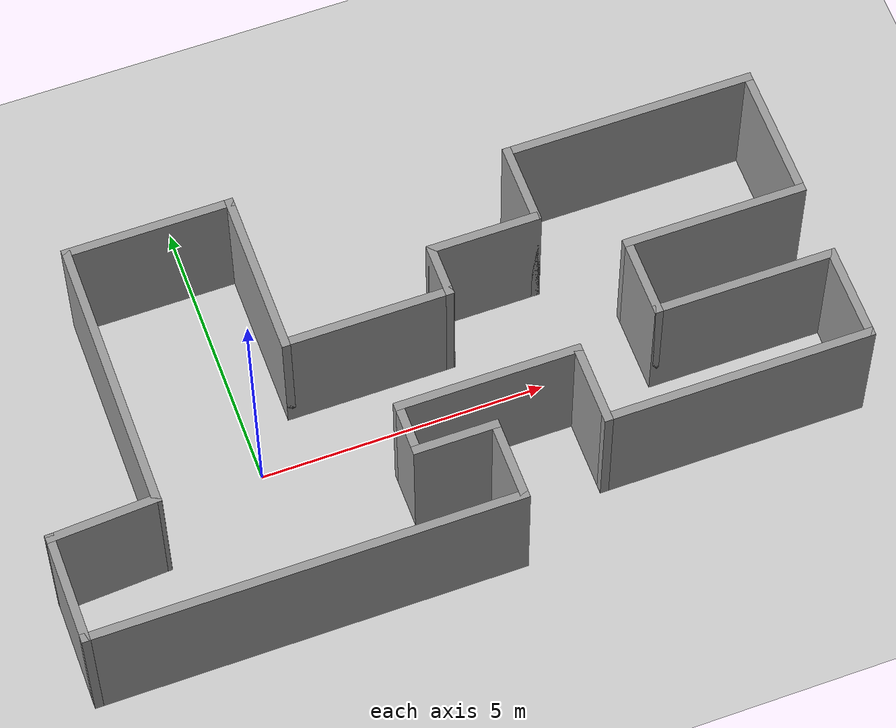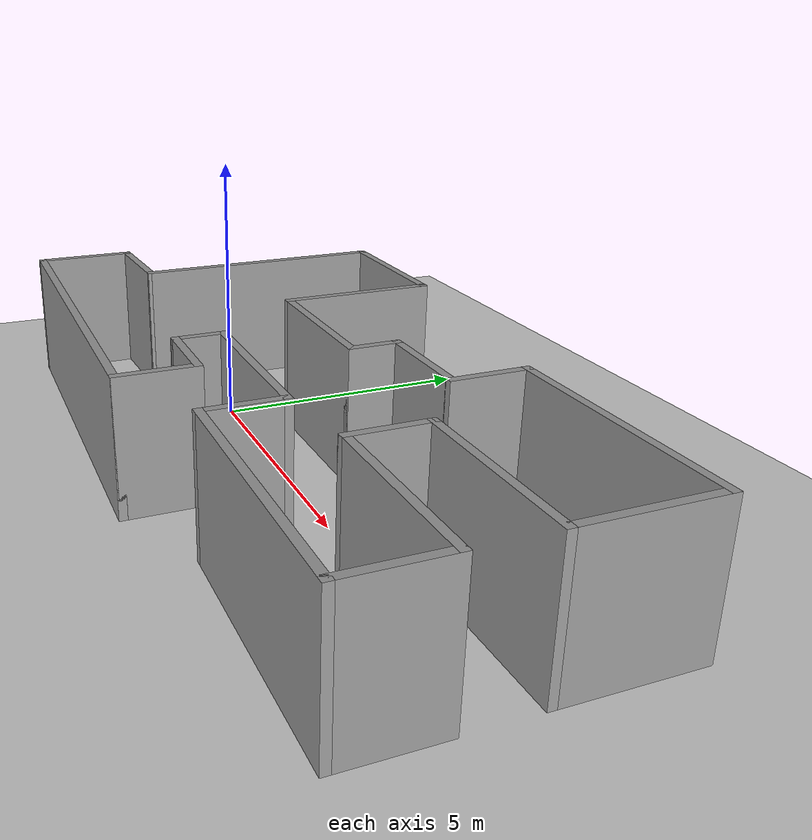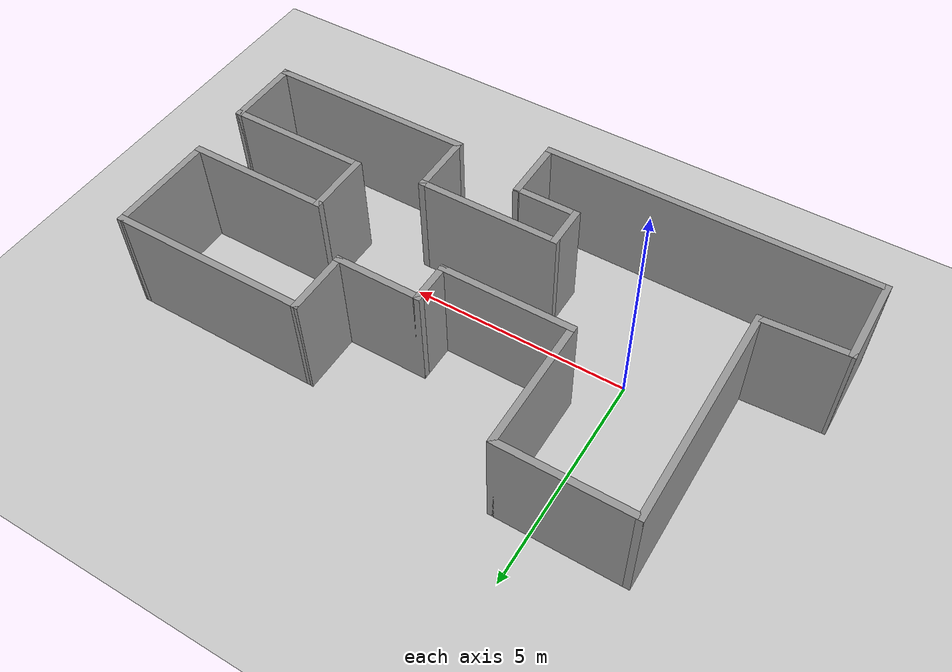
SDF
<sdf version="1.6">
 <world name="default">
  <light name="sun" type="directional">
   <pose>0 0 10 0 -0 0</pose>
   <diffuse>0.8 0.8 0.8 1</diffuse>
   <specular>0.2 0.2 0.2 1</specular>
   <attenuation>
    <range>1000</range>
    <constant>0.9</constant>
    <linear>0.01</linear>
    <quadratic>0.001</quadratic>
   </attenuation>
   <direction>-0.5 0.1 -0.9</direction>
  </light>
  <model name="ground_plane">
   <static>1</static>
   <link name="link">
    <collision name="collision">
     <geometry><plane><normal>0 0 1</normal><size>100 100</size></plane></geometry>
     <surface><friction><ode><mu>100</mu><mu2>50</mu2></ode></friction></surface>
    </collision>
    <visual name="visual">
     <cast_shadows>0</cast_shadows>
     <geometry><plane><normal>0 0 1</normal><size>100 100</size></plane></geometry>
     <material>
      <script><uri>file://media/materials/scripts/gazebo.material</uri><name>Gazebo/Grey</name></script>
     </material>
    </visual>
   </link>
  </model>
  <gravity>0 0 -9.8</gravity>
  <magnetic_field>6e-06 2.3e-05 -4.2e-05</magnetic_field>
  <atmosphere type="adiabatic"/>
  <physics name="default_physics" default="0" type="ode">
   <max_step_size>0.001</max_step_size>
   <real_time_factor>1</real_time_factor>
   <real_time_update_rate>1000</real_time_update_rate>
  </physics>
  <scene><ambient>0.4 0.4 0.4 1</ambient><background>0.7 0.7 0.7 1</background><shadows>1</shadows></scene>
  <spherical_coordinates>
   <surface_model>EARTH_WGS84</surface_model>
   <latitude_deg>0</latitude_deg>
   <longitude_deg>0</longitude_deg>
   <elevation>0</elevation>
   <heading_deg>0</heading_deg>
  </spherical_coordinates>
  <model name="MyWorld">
   <pose>3.02827 0.399776 0 0 -0 0</pose>
   <link name="Wall_1">
    <collision name="Wall_1_Collision">
     <geometry><box><size>5 0.15 2.5</size></box></geometry>
     <pose>0 0 1.25 0 -0 0</pose>
    </collision>
    <visual name="Wall_1_Visual">
     <pose>0 0 1.25 0 -0 0</pose>
     <geometry><box><size>5 0.15 2.5</size></box></geometry>
     <material>
      <script><uri>file://media/materials/scripts/gazebo.material</uri><name>Gazebo/Grey</name></script>
      <ambient>1 1 1 1</ambient>
     </material>
     <meta><layer>0</layer></meta>
    </visual>
    <pose>-5.04798 0.975 0 0 -0 1.5708</pose>
   </link>
   <link name="Wall_10">
    <collision name="Wall_10_Collision">
     <geometry><box><size>3.25 0.15 2.5</size></box></geometry>
     <pose>0 0 1.25 0 -0 0</pose>
    </collision>
    <visual name="Wall_10_Visual">
     <pose>0 0 1.25 0 -0 0</pose>
     <geometry><box><size>3.25 0.15 2.5</size></box></geometry>
     <material>
      <script><uri>file://media/materials/scripts/gazebo.material</uri><name>Gazebo/Grey</name></script>
      <ambient>1 1 1 1</ambient>
     </material>
     <meta><layer>0</layer></meta>
    </visual>
    <pose>5.30202 0.4 0 0 -0 3.14159</pose>
   </link>
   <link name="Wall_11">
    <collision name="Wall_11_Collision">
     <geometry><box><size>1.5 0.15 2.5</size></box></geometry>
     <pose>0 0 1.25 0 -0 0</pose>
    </collision>
    <visual name="Wall_11_Visual">
     <pose>0 0 1.25 0 -0 0</pose>
     <geometry><box><size>1.5 0.15 2.5</size></box></geometry>
     <material>
      <script><uri>file://media/materials/scripts/gazebo.material</uri><name>Gazebo/Grey</name></script>
      <ambient>1 1 1 1</ambient>
     </material>
     <meta><layer>0</layer></meta>
    </visual>
    <pose>3.75202 -0.275 0 0 0 -1.5708</pose>
   </link>
   <link name="Wall_12">
    <collision name="Wall_12_Collision">
     <geometry><box><size>3.25 0.15 2.5</size></box></geometry>
     <pose>0 0 1.25 0 -0 0</pose>
    </collision>
    <visual name="Wall_12_Visual">
     <pose>0 0 1.25 0 -0 0</pose>
     <geometry><box><size>3.25 0.15 2.5</size></box></geometry>
     <material>
      <script><uri>file://media/materials/scripts/gazebo.material</uri><name>Gazebo/Grey</name></script>
      <ambient>1 1 1 1</ambient>
     </material>
     <meta><layer>0</layer></meta>
    </visual>
    <pose>5.30202 -0.95 0 0 -0 0</pose>
   </link>
   <link name="Wall_13">
    <collision name="Wall_13_Collision">
     <geometry><box><size>1.75 0.15 2.5</size></box></geometry>
     <pose>0 0 1.25 0 -0 0</pose>
    </collision>
    <visual name="Wall_13_Visual">
     <pose>0 0 1.25 0 -0 0</pose>
     <geometry><box><size>1.75 0.15 2.5</size></box></geometry>
     <material>
      <script><uri>file://media/materials/scripts/gazebo.material</uri><name>Gazebo/Grey</name></script>
      <ambient>1 1 1 1</ambient>
     </material>
     <meta><layer>0</layer></meta>
    </visual>
    <pose>6.85202 -1.75 0 0 0 -1.5708</pose>
   </link>
   <link name="Wall_14">
    <collision name="Wall_14_Collision">
     <geometry><box><size>4.75 0.15 2.5</size></box></geometry>
     <pose>0 0 1.25 0 -0 0</pose>
    </collision>
    <visual name="Wall_14_Visual">
     <pose>0 0 1.25 0 -0 0</pose>
     <geometry><box><size>4.75 0.15 2.5</size></box></geometry>
     <material>
      <script><uri>file://media/materials/scripts/gazebo.material</uri><name>Gazebo/Grey</name></script>
      <ambient>1 1 1 1</ambient>
     </material>
     <meta><layer>0</layer></meta>
    </visual>
    <pose>4.55202 -2.55 0 0 -0 3.14159</pose>
   </link>
   <link name="Wall_15">
    <collision name="Wall_15_Collision">
     <geometry><box><size>1.5 0.15 2.5</size></box></geometry>
     <pose>0 0 1.25 0 -0 0</pose>
    </collision>
    <visual name="Wall_15_Visual">
     <pose>0 0 1.25 0 -0 0</pose>
     <geometry><box><size>1.5 0.15 2.5</size></box></geometry>
     <material>
      <script><uri>file://media/materials/scripts/gazebo.material</uri><name>Gazebo/Grey</name></script>
      <ambient>1 1 1 1</ambient>
     </material>
     <meta><layer>0</layer></meta>
    </visual>
    <pose>2.25202 -1.875 0 0 -0 1.5708</pose>
   </link>
   <link name="Wall_16">
    <collision name="Wall_16_Collision">
     <geometry><box><size>3.25 0.15 2.5</size></box></geometry>
     <pose>0 0 1.25 0 -0 0</pose>
    </collision>
    <visual name="Wall_16_Visual">
     <pose>0 0 1.25 0 -0 0</pose>
     <geometry><box><size>3.25 0.15 2.5</size></box></geometry>
     <material>
      <script><uri>file://media/materials/scripts/gazebo.material</uri><name>Gazebo/Grey</name></script>
      <ambient>1 1 1 1</ambient>
     </material>
     <meta><layer>0</layer></meta>
    </visual>
    <pose>0.702022 -1.2 0 0 -0 3.14159</pose>
   </link>
   <link name="Wall_17">
    <collision name="Wall_17_Collision">
     <geometry><box><size>1 0.15 2.5</size></box></geometry>
     <pose>0 0 1.25 0 -0 0</pose>
    </collision>
    <visual name="Wall_17_Visual">
     <pose>0 0 1.25 0 -0 0</pose>
     <geometry><box><size>1 0.15 2.5</size></box></geometry>
     <material>
      <script><uri>file://media/materials/scripts/gazebo.material</uri><name>Gazebo/Grey</name></script>
      <ambient>1 1 1 1</ambient>
     </material>
     <meta><layer>0</layer></meta>
    </visual>
    <pose>-0.847978 -1.625 0 0 0 -1.5708</pose>
   </link>
   <link name="Wall_18">
    <collision name="Wall_18_Collision">
     <geometry><box><size>1.5 0.15 2.5</size></box></geometry>
     <pose>0 0 1.25 0 -0 0</pose>
    </collision>
    <visual name="Wall_18_Visual">
     <pose>0 0 1.25 0 -0 0</pose>
     <geometry><box><size>1.5 0.15 2.5</size></box></geometry>
     <material>
      <script><uri>file://media/materials/scripts/gazebo.material</uri><name>Gazebo/Grey</name></script>
      <ambient>1 1 1 1</ambient>
     </material>
     <meta><layer>0</layer></meta>
    </visual>
    <pose>-0.172978 -2.05 0 0 -0 0</pose>
   </link>
   <link name="Wall_19">
    <collision name="Wall_19_Collision">
     <geometry><box><size>1.5 0.15 2.5</size></box></geometry>
     <pose>0 0 1.25 0 -0 0</pose>
    </collision>
    <visual name="Wall_19_Visual">
     <pose>0 0 1.25 0 -0 0</pose>
     <geometry><box><size>1.5 0.15 2.5</size></box></geometry>
     <material>
      <script><uri>file://media/materials/scripts/gazebo.material</uri><name>Gazebo/Grey</name></script>
      <ambient>1 1 1 1</ambient>
     </material>
     <meta><layer>0</layer></meta>
    </visual>
    <pose>0.502022 -2.725 0 0 0 -1.5708</pose>
   </link>
   <link name="Wall_2">
    <collision name="Wall_2_Collision">
     <geometry><box><size>3 0.15 2.5</size></box></geometry>
     <pose>0 0 1.25 0 -0 0</pose>
    </collision>
    <visual name="Wall_2_Visual">
     <pose>0 0 1.25 0 -0 0</pose>
     <geometry><box><size>3 0.15 2.5</size></box></geometry>
     <material>
      <script><uri>file://media/materials/scripts/gazebo.material</uri><name>Gazebo/Grey</name></script>
      <ambient>1 1 1 1</ambient>
     </material>
     <meta><layer>0</layer></meta>
    </visual>
    <pose>-3.62298 3.4 0 0 -0 0</pose>
   </link>
   <link name="Wall_20">
    <collision name="Wall_20_Collision">
     <geometry><box><size>7.5 0.15 2.5</size></box></geometry>
     <pose>0 0 1.25 0 -0 0</pose>
    </collision>
    <visual name="Wall_20_Visual">
     <pose>0 0 1.25 0 -0 0</pose>
     <geometry><box><size>7.5 0.15 2.5</size></box></geometry>
     <material>
      <script><uri>file://media/materials/scripts/gazebo.material</uri><name>Gazebo/Grey</name></script>
      <ambient>1 1 1 1</ambient>
     </material>
     <meta><layer>0</layer></meta>
    </visual>
    <pose>-3.17298 -3.4 0 0 -0 3.14159</pose>
   </link>
   <link name="Wall_21">
    <collision name="Wall_21_Collision">
     <geometry><box><size>2 0.15 2.5</size></box></geometry>
     <pose>0 0 1.25 0 -0 0</pose>
    </collision>
    <visual name="Wall_21_Visual">
     <pose>0 0 1.25 0 -0 0</pose>
     <geometry><box><size>2 0.15 2.5</size></box></geometry>
     <material>
      <script><uri>file://media/materials/scripts/gazebo.material</uri><name>Gazebo/Grey</name></script>
      <ambient>1 1 1 1</ambient>
     </material>
     <meta><layer>0</layer></meta>
    </visual>
    <pose>-6.84798 -2.475 0 0 -0 1.5708</pose>
   </link>
   <link name="Wall_22">
    <collision name="Wall_22_Collision">
     <geometry><box><size>1.95278 0.15 2.5</size></box></geometry>
     <pose>0 0 1.25 0 -0 0</pose>
    </collision>
    <visual name="Wall_22_Visual">
     <pose>0 0 1.25 0 -0 0</pose>
     <geometry><box><size>1.95278 0.15 2.5</size></box></geometry>
     <material>
      <script><uri>file://media/materials/scripts/gazebo.material</uri><name>Gazebo/Grey</name></script>
      <ambient>1 1 1 1</ambient>
     </material>
     <meta><layer>0</layer></meta>
    </visual>
    <pose>-5.94798 -1.5 0 0 -0 0.055499</pose>
   </link>
   <link name="Wall_3">
    <collision name="Wall_3_Collision">
     <geometry><box><size>3 0.15 2.5</size></box></geometry>
     <pose>0 0 1.25 0 -0 0</pose>
    </collision>
    <visual name="Wall_3_Visual">
     <pose>0 0 1.25 0 -0 0</pose>
     <geometry><box><size>3 0.15 2.5</size></box></geometry>
     <material>
      <script><uri>file://media/materials/scripts/gazebo.material</uri><name>Gazebo/Grey</name></script>
      <ambient>1 1 1 1</ambient>
     </material>
     <meta><layer>0</layer></meta>
    </visual>
    <pose>-2.19798 1.975 0 0 0 -1.5708</pose>
   </link>
   <link name="Wall_4">
    <collision name="Wall_4_Collision">
     <geometry><box><size>3 0.15 2.5</size></box></geometry>
     <pose>0 0 1.25 0 -0 0</pose>
    </collision>
    <visual name="Wall_4_Visual">
     <pose>0 0 1.25 0 -0 0</pose>
     <geometry><box><size>3 0.15 2.5</size></box></geometry>
     <material>
      <script><uri>file://media/materials/scripts/gazebo.material</uri><name>Gazebo/Grey</name></script>
      <ambient>1 1 1 1</ambient>
     </material>
     <meta><layer>0</layer></meta>
    </visual>
    <pose>-0.772978 0.55 0 0 -0 0</pose>
   </link>
   <link name="Wall_5">
    <collision name="Wall_5_Collision">
     <geometry><box><size>1 0.15 2.5</size></box></geometry>
     <pose>0 0 1.25 0 -0 0</pose>
    </collision>
    <visual name="Wall_5_Visual">
     <pose>0 0 1.25 0 -0 0</pose>
     <geometry><box><size>1 0.15 2.5</size></box></geometry>
     <material>
      <script><uri>file://media/materials/scripts/gazebo.material</uri><name>Gazebo/Grey</name></script>
      <ambient>1 1 1 1</ambient>
     </material>
     <meta><layer>0</layer></meta>
    </visual>
    <pose>0.652022 0.975 0 0 -0 1.5708</pose>
   </link>
   <link name="Wall_6">
    <collision name="Wall_6_Collision">
     <geometry><box><size>2 0.15 2.5</size></box></geometry>
     <pose>0 0 1.25 0 -0 0</pose>
    </collision>
    <visual name="Wall_6_Visual">
     <pose>0 0 1.25 0 -0 0</pose>
     <geometry><box><size>2 0.15 2.5</size></box></geometry>
     <material>
      <script><uri>file://media/materials/scripts/gazebo.material</uri><name>Gazebo/Grey</name></script>
      <ambient>1 1 1 1</ambient>
     </material>
     <meta><layer>0</layer></meta>
    </visual>
    <pose>1.57702 1.4 0 0 -0 0</pose>
   </link>
   <link name="Wall_7">
    <collision name="Wall_7_Collision">
     <geometry><box><size>1.5 0.15 2.5</size></box></geometry>
     <pose>0 0 1.25 0 -0 0</pose>
    </collision>
    <visual name="Wall_7_Visual">
     <pose>0 0 1.25 0 -0 0</pose>
     <geometry><box><size>1.5 0.15 2.5</size></box></geometry>
     <material>
      <script><uri>file://media/materials/scripts/gazebo.material</uri><name>Gazebo/Grey</name></script>
      <ambient>1 1 1 1</ambient>
     </material>
     <meta><layer>0</layer></meta>
    </visual>
    <pose>2.50202 2.075 0 0 -0 1.5708</pose>
   </link>
   <link name="Wall_8">
    <collision name="Wall_8_Collision">
     <geometry><box><size>4.5 0.15 2.5</size></box></geometry>
     <pose>0 0 1.25 0 -0 0</pose>
    </collision>
    <visual name="Wall_8_Visual">
     <pose>0 0 1.25 0 -0 0</pose>
     <geometry><box><size>4.5 0.15 2.5</size></box></geometry>
     <material>
      <script><uri>file://media/materials/scripts/gazebo.material</uri><name>Gazebo/Grey</name></script>
      <ambient>1 1 1 1</ambient>
     </material>
     <meta><layer>0</layer></meta>
    </visual>
    <pose>4.67702 2.75 0 0 -0 0</pose>
   </link>
   <link name="Wall_9">
    <collision name="Wall_9_Collision">
     <geometry><box><size>2.5 0.15 2.5</size></box></geometry>
     <pose>0 0 1.25 0 -0 0</pose>
    </collision>
    <visual name="Wall_9_Visual">
     <pose>0 0 1.25 0 -0 0</pose>
     <geometry><box><size>2.5 0.15 2.5</size></box></geometry>
     <material>
      <script><uri>file://media/materials/scripts/gazebo.material</uri><name>Gazebo/Grey</name></script>
      <ambient>1 1 1 1</ambient>
     </material>
     <meta><layer>0</layer></meta>
    </visual>
    <pose>6.85202 1.575 0 0 0 -1.5708</pose>
   </link>
   <static>1</static>
  </model>
 </world>
</sdf>
